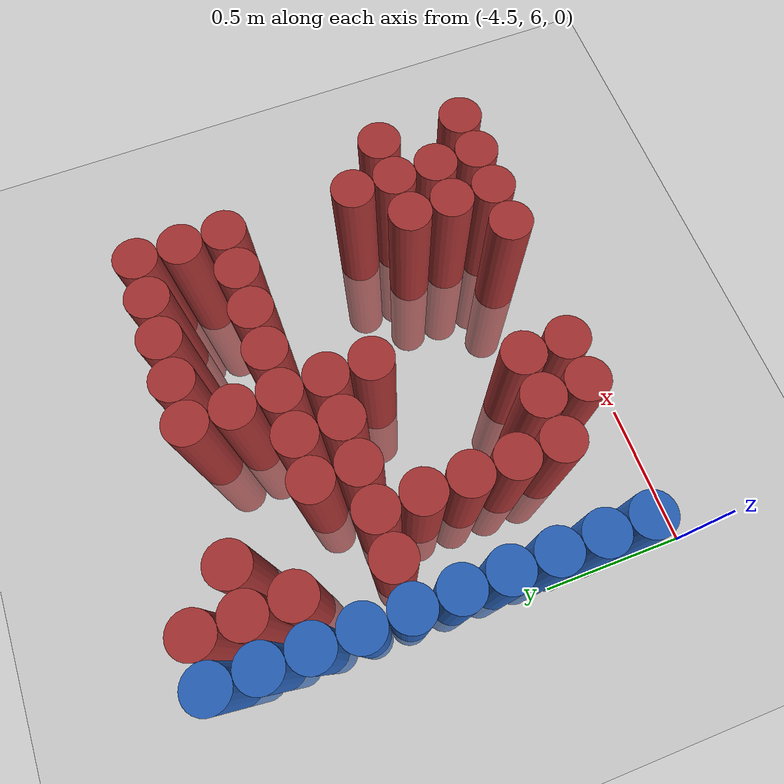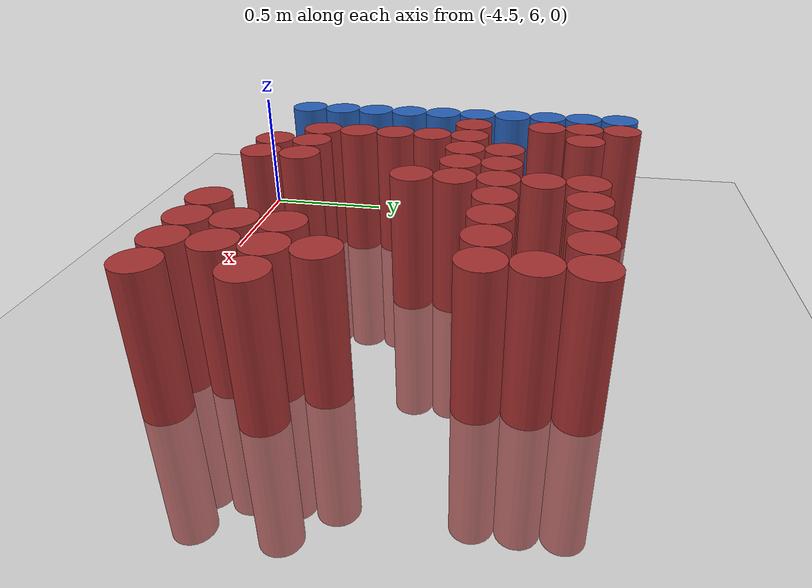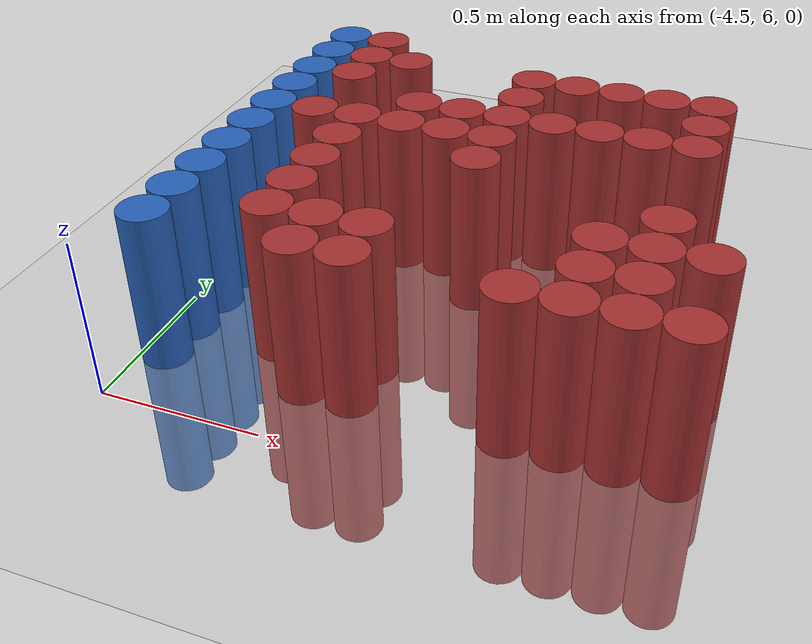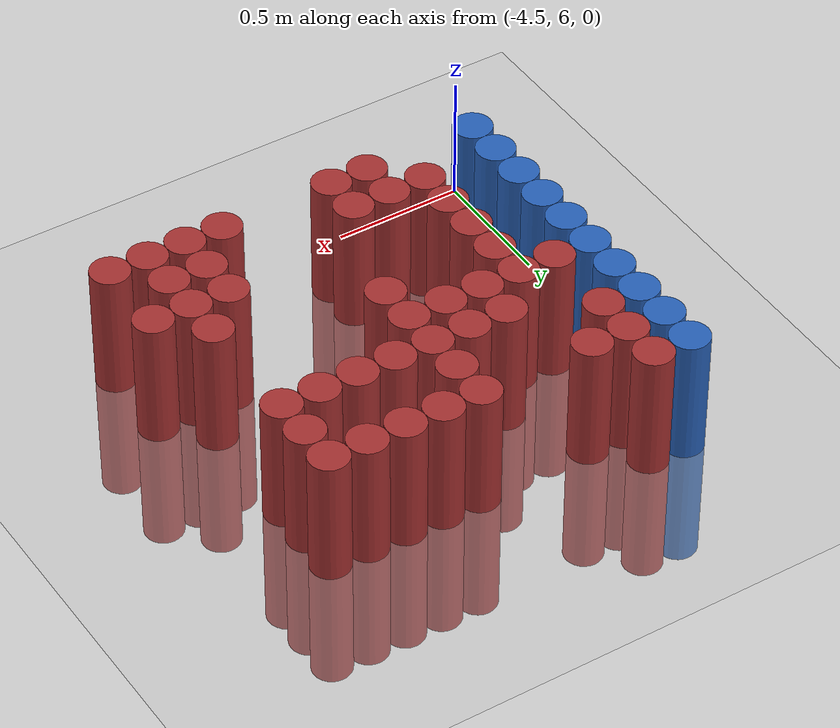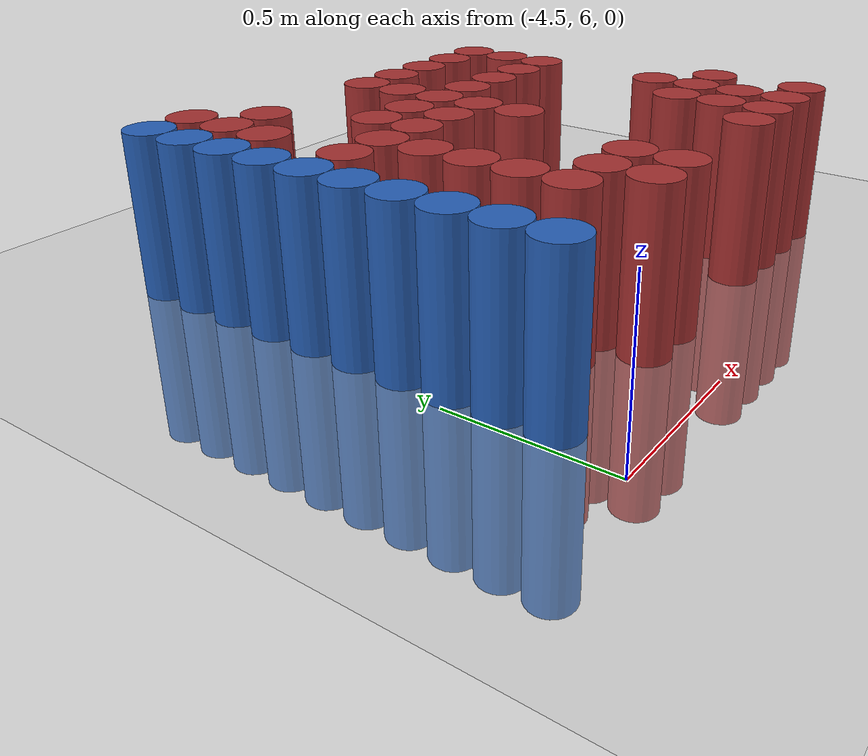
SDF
<sdf version="1.6">
 <world name="default">
  <model name="ground_plane">
   <static>1</static>
   <link name="link">
    <collision name="collision">
     <geometry><plane><normal>0 0 1</normal><size>100 100</size></plane></geometry>
     <surface><friction><ode><mu>100</mu><mu2>50</mu2></ode></friction></surface>
    </collision>
    <visual name="visual">
     <cast_shadows>0</cast_shadows>
     <geometry><plane><normal>0 0 1</normal><size>100 100</size></plane></geometry>
     <material>
      <script><uri>file://media/materials/scripts/gazebo.material</uri><name>Gazebo/Grey</name></script>
     </material>
    </visual>
   </link>
  </model>
  <model name="unit_cylinder_103">
   <static>1</static>
   <pose>-4.425000 6.225000 0.000000 0.000000 0.000000 0.000000</pose>
   <link name="link">
    <inertial>
     <mass>1</mass>
     <inertia><ixx>0.145833</ixx><ixy>0</ixy><ixz>0</ixz><iyy>0.145833</iyy><iyz>0</iyz><izz>0.125</izz></inertia>
    </inertial>
    <collision name="collision">
     <geometry><cylinder><radius>0.075000</radius><length>1</length></cylinder></geometry>
    </collision>
    <visual name="visual">
     <geometry><cylinder><radius>0.075000</radius><length>1</length></cylinder></geometry>
     <material>
      <ambient>0.152000 0.379000 0.720000 1</ambient>
      <diffuse>0.152000 0.379000 0.720000 1</diffuse>
     </material>
     <material>
      <script><name>Gazebo/Grey</name><uri>file://media/materials/scripts/gazebo.material</uri></script>
     </material>
    </visual>
   </link>
  </model>
  <model name="unit_cylinder_104">
   <static>1</static>
   <pose>-4.425000 6.375000 0.000000 0.000000 0.000000 0.000000</pose>
   <link name="link">
    <inertial>
     <mass>1</mass>
     <inertia><ixx>0.145833</ixx><ixy>0</ixy><ixz>0</ixz><iyy>0.145833</iyy><iyz>0</iyz><izz>0.125</izz></inertia>
    </inertial>
    <collision name="collision">
     <geometry><cylinder><radius>0.075000</radius><length>1</length></cylinder></geometry>
    </collision>
    <visual name="visual">
     <geometry><cylinder><radius>0.075000</radius><length>1</length></cylinder></geometry>
     <material>
      <ambient>0.152000 0.379000 0.720000 1</ambient>
      <diffuse>0.152000 0.379000 0.720000 1</diffuse>
     </material>
     <material>
      <script><name>Gazebo/Grey</name><uri>file://media/materials/scripts/gazebo.material</uri></script>
     </material>
    </visual>
   </link>
  </model>
  <model name="unit_cylinder_105">
   <static>1</static>
   <pose>-4.425000 6.525000 0.000000 0.000000 0.000000 0.000000</pose>
   <link name="link">
    <inertial>
     <mass>1</mass>
     <inertia><ixx>0.145833</ixx><ixy>0</ixy><ixz>0</ixz><iyy>0.145833</iyy><iyz>0</iyz><izz>0.125</izz></inertia>
    </inertial>
    <collision name="collision">
     <geometry><cylinder><radius>0.075000</radius><length>1</length></cylinder></geometry>
    </collision>
    <visual name="visual">
     <geometry><cylinder><radius>0.075000</radius><length>1</length></cylinder></geometry>
     <material>
      <ambient>0.152000 0.379000 0.720000 1</ambient>
      <diffuse>0.152000 0.379000 0.720000 1</diffuse>
     </material>
     <material>
      <script><name>Gazebo/Grey</name><uri>file://media/materials/scripts/gazebo.material</uri></script>
     </material>
    </visual>
   </link>
  </model>
  <model name="unit_cylinder_106">
   <static>1</static>
   <pose>-4.425000 6.675000 0.000000 0.000000 0.000000 0.000000</pose>
   <link name="link">
    <inertial>
     <mass>1</mass>
     <inertia><ixx>0.145833</ixx><ixy>0</ixy><ixz>0</ixz><iyy>0.145833</iyy><iyz>0</iyz><izz>0.125</izz></inertia>
    </inertial>
    <collision name="collision">
     <geometry><cylinder><radius>0.075000</radius><length>1</length></cylinder></geometry>
    </collision>
    <visual name="visual">
     <geometry><cylinder><radius>0.075000</radius><length>1</length></cylinder></geometry>
     <material>
      <ambient>0.152000 0.379000 0.720000 1</ambient>
      <diffuse>0.152000 0.379000 0.720000 1</diffuse>
     </material>
     <material>
      <script><name>Gazebo/Grey</name><uri>file://media/materials/scripts/gazebo.material</uri></script>
     </material>
    </visual>
   </link>
  </model>
  <model name="unit_cylinder_107">
   <static>1</static>
   <pose>-4.425000 6.825000 0.000000 0.000000 0.000000 0.000000</pose>
   <link name="link">
    <inertial>
     <mass>1</mass>
     <inertia><ixx>0.145833</ixx><ixy>0</ixy><ixz>0</ixz><iyy>0.145833</iyy><iyz>0</iyz><izz>0.125</izz></inertia>
    </inertial>
    <collision name="collision">
     <geometry><cylinder><radius>0.075000</radius><length>1</length></cylinder></geometry>
    </collision>
    <visual name="visual">
     <geometry><cylinder><radius>0.075000</radius><length>1</length></cylinder></geometry>
     <material>
      <ambient>0.152000 0.379000 0.720000 1</ambient>
      <diffuse>0.152000 0.379000 0.720000 1</diffuse>
     </material>
     <material>
      <script><name>Gazebo/Grey</name><uri>file://media/materials/scripts/gazebo.material</uri></script>
     </material>
    </visual>
   </link>
  </model>
  <model name="unit_cylinder_108">
   <static>1</static>
   <pose>-4.425000 6.975000 0.000000 0.000000 0.000000 0.000000</pose>
   <link name="link">
    <inertial>
     <mass>1</mass>
     <inertia><ixx>0.145833</ixx><ixy>0</ixy><ixz>0</ixz><iyy>0.145833</iyy><iyz>0</iyz><izz>0.125</izz></inertia>
    </inertial>
    <collision name="collision">
     <geometry><cylinder><radius>0.075000</radius><length>1</length></cylinder></geometry>
    </collision>
    <visual name="visual">
     <geometry><cylinder><radius>0.075000</radius><length>1</length></cylinder></geometry>
     <material>
      <ambient>0.152000 0.379000 0.720000 1</ambient>
      <diffuse>0.152000 0.379000 0.720000 1</diffuse>
     </material>
     <material>
      <script><name>Gazebo/Grey</name><uri>file://media/materials/scripts/gazebo.material</uri></script>
     </material>
    </visual>
   </link>
  </model>
  <model name="unit_cylinder_109">
   <static>1</static>
   <pose>-4.425000 7.125000 0.000000 0.000000 0.000000 0.000000</pose>
   <link name="link">
    <inertial>
     <mass>1</mass>
     <inertia><ixx>0.145833</ixx><ixy>0</ixy><ixz>0</ixz><iyy>0.145833</iyy><iyz>0</iyz><izz>0.125</izz></inertia>
    </inertial>
    <collision name="collision">
     <geometry><cylinder><radius>0.075000</radius><length>1</length></cylinder></geometry>
    </collision>
    <visual name="visual">
     <geometry><cylinder><radius>0.075000</radius><length>1</length></cylinder></geometry>
     <material>
      <ambient>0.152000 0.379000 0.720000 1</ambient>
      <diffuse>0.152000 0.379000 0.720000 1</diffuse>
     </material>
     <material>
      <script><name>Gazebo/Grey</name><uri>file://media/materials/scripts/gazebo.material</uri></script>
     </material>
    </visual>
   </link>
  </model>
  <model name="unit_cylinder_110">
   <static>1</static>
   <pose>-4.425000 7.275000 0.000000 0.000000 0.000000 0.000000</pose>
   <link name="link">
    <inertial>
     <mass>1</mass>
     <inertia><ixx>0.145833</ixx><ixy>0</ixy><ixz>0</ixz><iyy>0.145833</iyy><iyz>0</iyz><izz>0.125</izz></inertia>
    </inertial>
    <collision name="collision">
     <geometry><cylinder><radius>0.075000</radius><length>1</length></cylinder></geometry>
    </collision>
    <visual name="visual">
     <geometry><cylinder><radius>0.075000</radius><length>1</length></cylinder></geometry>
     <material>
      <ambient>0.152000 0.379000 0.720000 1</ambient>
      <diffuse>0.152000 0.379000 0.720000 1</diffuse>
     </material>
     <material>
      <script><name>Gazebo/Grey</name><uri>file://media/materials/scripts/gazebo.material</uri></script>
     </material>
    </visual>
   </link>
  </model>
  <model name="unit_cylinder_111">
   <static>1</static>
   <pose>-4.425000 7.425000 0.000000 0.000000 0.000000 0.000000</pose>
   <link name="link">
    <inertial>
     <mass>1</mass>
     <inertia><ixx>0.145833</ixx><ixy>0</ixy><ixz>0</ixz><iyy>0.145833</iyy><iyz>0</iyz><izz>0.125</izz></inertia>
    </inertial>
    <collision name="collision">
     <geometry><cylinder><radius>0.075000</radius><length>1</length></cylinder></geometry>
    </collision>
    <visual name="visual">
     <geometry><cylinder><radius>0.075000</radius><length>1</length></cylinder></geometry>
     <material>
      <ambient>0.152000 0.379000 0.720000 1</ambient>
      <diffuse>0.152000 0.379000 0.720000 1</diffuse>
     </material>
     <material>
      <script><name>Gazebo/Grey</name><uri>file://media/materials/scripts/gazebo.material</uri></script>
     </material>
    </visual>
   </link>
  </model>
  <model name="unit_cylinder_112">
   <static>1</static>
   <pose>-4.425000 7.575000 0.000000 0.000000 0.000000 0.000000</pose>
   <link name="link">
    <inertial>
     <mass>1</mass>
     <inertia><ixx>0.145833</ixx><ixy>0</ixy><ixz>0</ixz><iyy>0.145833</iyy><iyz>0</iyz><izz>0.125</izz></inertia>
    </inertial>
    <collision name="collision">
     <geometry><cylinder><radius>0.075000</radius><length>1</length></cylinder></geometry>
    </collision>
    <visual name="visual">
     <geometry><cylinder><radius>0.075000</radius><length>1</length></cylinder></geometry>
     <material>
      <ambient>0.152000 0.379000 0.720000 1</ambient>
      <diffuse>0.152000 0.379000 0.720000 1</diffuse>
     </material>
     <material>
      <script><name>Gazebo/Grey</name><uri>file://media/materials/scripts/gazebo.material</uri></script>
     </material>
    </visual>
   </link>
  </model>
  <model name="unit_cylinder_129">
   <static>1</static>
   <pose>-4.275000 6.975000 0.000000 0.000000 0.000000 0.000000</pose>
   <link name="link">
    <inertial>
     <mass>1</mass>
     <inertia><ixx>0.145833</ixx><ixy>0</ixy><ixz>0</ixz><iyy>0.145833</iyy><iyz>0</iyz><izz>0.125</izz></inertia>
    </inertial>
    <collision name="collision">
     <geometry><cylinder><radius>0.075000</radius><length>1</length></cylinder></geometry>
    </collision>
    <visual name="visual">
     <geometry><cylinder><radius>0.075000</radius><length>1</length></cylinder></geometry>
     <material>
      <ambient>0.648000 0.192000 0.192000 1</ambient>
      <diffuse>0.648000 0.192000 0.192000 1</diffuse>
     </material>
     <material>
      <script><name>Gazebo/Grey</name><uri>file://media/materials/scripts/gazebo.material</uri></script>
     </material>
    </visual>
   </link>
  </model>
  <model name="unit_cylinder_130">
   <static>1</static>
   <pose>-4.275000 7.275000 0.000000 0.000000 0.000000 0.000000</pose>
   <link name="link">
    <inertial>
     <mass>1</mass>
     <inertia><ixx>0.145833</ixx><ixy>0</ixy><ixz>0</ixz><iyy>0.145833</iyy><iyz>0</iyz><izz>0.125</izz></inertia>
    </inertial>
    <collision name="collision">
     <geometry><cylinder><radius>0.075000</radius><length>1</length></cylinder></geometry>
    </collision>
    <visual name="visual">
     <geometry><cylinder><radius>0.075000</radius><length>1</length></cylinder></geometry>
     <material>
      <ambient>0.648000 0.192000 0.192000 1</ambient>
      <diffuse>0.648000 0.192000 0.192000 1</diffuse>
     </material>
     <material>
      <script><name>Gazebo/Grey</name><uri>file://media/materials/scripts/gazebo.material</uri></script>
     </material>
    </visual>
   </link>
  </model>
  <model name="unit_cylinder_131">
   <static>1</static>
   <pose>-4.275000 7.425000 0.000000 0.000000 0.000000 0.000000</pose>
   <link name="link">
    <inertial>
     <mass>1</mass>
     <inertia><ixx>0.145833</ixx><ixy>0</ixy><ixz>0</ixz><iyy>0.145833</iyy><iyz>0</iyz><izz>0.125</izz></inertia>
    </inertial>
    <collision name="collision">
     <geometry><cylinder><radius>0.075000</radius><length>1</length></cylinder></geometry>
    </collision>
    <visual name="visual">
     <geometry><cylinder><radius>0.075000</radius><length>1</length></cylinder></geometry>
     <material>
      <ambient>0.648000 0.192000 0.192000 1</ambient>
      <diffuse>0.648000 0.192000 0.192000 1</diffuse>
     </material>
     <material>
      <script><name>Gazebo/Grey</name><uri>file://media/materials/scripts/gazebo.material</uri></script>
     </material>
    </visual>
   </link>
  </model>
  <model name="unit_cylinder_132">
   <static>1</static>
   <pose>-4.275000 7.575000 0.000000 0.000000 0.000000 0.000000</pose>
   <link name="link">
    <inertial>
     <mass>1</mass>
     <inertia><ixx>0.145833</ixx><ixy>0</ixy><ixz>0</ixz><iyy>0.145833</iyy><iyz>0</iyz><izz>0.125</izz></inertia>
    </inertial>
    <collision name="collision">
     <geometry><cylinder><radius>0.075000</radius><length>1</length></cylinder></geometry>
    </collision>
    <visual name="visual">
     <geometry><cylinder><radius>0.075000</radius><length>1</length></cylinder></geometry>
     <material>
      <ambient>0.648000 0.192000 0.192000 1</ambient>
      <diffuse>0.648000 0.192000 0.192000 1</diffuse>
     </material>
     <material>
      <script><name>Gazebo/Grey</name><uri>file://media/materials/scripts/gazebo.material</uri></script>
     </material>
    </visual>
   </link>
  </model>
  <model name="unit_cylinder_142">
   <static>1</static>
   <pose>-4.125000 6.375000 0.000000 0.000000 0.000000 0.000000</pose>
   <link name="link">
    <inertial>
     <mass>1</mass>
     <inertia><ixx>0.145833</ixx><ixy>0</ixy><ixz>0</ixz><iyy>0.145833</iyy><iyz>0</iyz><izz>0.125</izz></inertia>
    </inertial>
    <collision name="collision">
     <geometry><cylinder><radius>0.075000</radius><length>1</length></cylinder></geometry>
    </collision>
    <visual name="visual">
     <geometry><cylinder><radius>0.075000</radius><length>1</length></cylinder></geometry>
     <material>
      <ambient>0.648000 0.192000 0.192000 1</ambient>
      <diffuse>0.648000 0.192000 0.192000 1</diffuse>
     </material>
     <material>
      <script><name>Gazebo/Grey</name><uri>file://media/materials/scripts/gazebo.material</uri></script>
     </material>
    </visual>
   </link>
  </model>
  <model name="unit_cylinder_143">
   <static>1</static>
   <pose>-4.125000 6.525000 0.000000 0.000000 0.000000 0.000000</pose>
   <link name="link">
    <inertial>
     <mass>1</mass>
     <inertia><ixx>0.145833</ixx><ixy>0</ixy><ixz>0</ixz><iyy>0.145833</iyy><iyz>0</iyz><izz>0.125</izz></inertia>
    </inertial>
    <collision name="collision">
     <geometry><cylinder><radius>0.075000</radius><length>1</length></cylinder></geometry>
    </collision>
    <visual name="visual">
     <geometry><cylinder><radius>0.075000</radius><length>1</length></cylinder></geometry>
     <material>
      <ambient>0.648000 0.192000 0.192000 1</ambient>
      <diffuse>0.648000 0.192000 0.192000 1</diffuse>
     </material>
     <material>
      <script><name>Gazebo/Grey</name><uri>file://media/materials/scripts/gazebo.material</uri></script>
     </material>
    </visual>
   </link>
  </model>
  <model name="unit_cylinder_144">
   <static>1</static>
   <pose>-4.125000 6.675000 0.000000 0.000000 0.000000 0.000000</pose>
   <link name="link">
    <inertial>
     <mass>1</mass>
     <inertia><ixx>0.145833</ixx><ixy>0</ixy><ixz>0</ixz><iyy>0.145833</iyy><iyz>0</iyz><izz>0.125</izz></inertia>
    </inertial>
    <collision name="collision">
     <geometry><cylinder><radius>0.075000</radius><length>1</length></cylinder></geometry>
    </collision>
    <visual name="visual">
     <geometry><cylinder><radius>0.075000</radius><length>1</length></cylinder></geometry>
     <material>
      <ambient>0.648000 0.192000 0.192000 1</ambient>
      <diffuse>0.648000 0.192000 0.192000 1</diffuse>
     </material>
     <material>
      <script><name>Gazebo/Grey</name><uri>file://media/materials/scripts/gazebo.material</uri></script>
     </material>
    </visual>
   </link>
  </model>
  <model name="unit_cylinder_145">
   <static>1</static>
   <pose>-4.125000 6.825000 0.000000 0.000000 0.000000 0.000000</pose>
   <link name="link">
    <inertial>
     <mass>1</mass>
     <inertia><ixx>0.145833</ixx><ixy>0</ixy><ixz>0</ixz><iyy>0.145833</iyy><iyz>0</iyz><izz>0.125</izz></inertia>
    </inertial>
    <collision name="collision">
     <geometry><cylinder><radius>0.075000</radius><length>1</length></cylinder></geometry>
    </collision>
    <visual name="visual">
     <geometry><cylinder><radius>0.075000</radius><length>1</length></cylinder></geometry>
     <material>
      <ambient>0.648000 0.192000 0.192000 1</ambient>
      <diffuse>0.648000 0.192000 0.192000 1</diffuse>
     </material>
     <material>
      <script><name>Gazebo/Grey</name><uri>file://media/materials/scripts/gazebo.material</uri></script>
     </material>
    </visual>
   </link>
  </model>
  <model name="unit_cylinder_146">
   <static>1</static>
   <pose>-4.125000 6.975000 0.000000 0.000000 0.000000 0.000000</pose>
   <link name="link">
    <inertial>
     <mass>1</mass>
     <inertia><ixx>0.145833</ixx><ixy>0</ixy><ixz>0</ixz><iyy>0.145833</iyy><iyz>0</iyz><izz>0.125</izz></inertia>
    </inertial>
    <collision name="collision">
     <geometry><cylinder><radius>0.075000</radius><length>1</length></cylinder></geometry>
    </collision>
    <visual name="visual">
     <geometry><cylinder><radius>0.075000</radius><length>1</length></cylinder></geometry>
     <material>
      <ambient>0.648000 0.192000 0.192000 1</ambient>
      <diffuse>0.648000 0.192000 0.192000 1</diffuse>
     </material>
     <material>
      <script><name>Gazebo/Grey</name><uri>file://media/materials/scripts/gazebo.material</uri></script>
     </material>
    </visual>
   </link>
  </model>
  <model name="unit_cylinder_147">
   <static>1</static>
   <pose>-4.125000 7.425000 0.000000 0.000000 0.000000 0.000000</pose>
   <link name="link">
    <inertial>
     <mass>1</mass>
     <inertia><ixx>0.145833</ixx><ixy>0</ixy><ixz>0</ixz><iyy>0.145833</iyy><iyz>0</iyz><izz>0.125</izz></inertia>
    </inertial>
    <collision name="collision">
     <geometry><cylinder><radius>0.075000</radius><length>1</length></cylinder></geometry>
    </collision>
    <visual name="visual">
     <geometry><cylinder><radius>0.075000</radius><length>1</length></cylinder></geometry>
     <material>
      <ambient>0.648000 0.192000 0.192000 1</ambient>
      <diffuse>0.648000 0.192000 0.192000 1</diffuse>
     </material>
     <material>
      <script><name>Gazebo/Grey</name><uri>file://media/materials/scripts/gazebo.material</uri></script>
     </material>
    </visual>
   </link>
  </model>
  <model name="unit_cylinder_150">
   <static>1</static>
   <pose>-3.975000 6.225000 0.000000 0.000000 0.000000 0.000000</pose>
   <link name="link">
    <inertial>
     <mass>1</mass>
     <inertia><ixx>0.145833</ixx><ixy>0</ixy><ixz>0</ixz><iyy>0.145833</iyy><iyz>0</iyz><izz>0.125</izz></inertia>
    </inertial>
    <collision name="collision">
     <geometry><cylinder><radius>0.075000</radius><length>1</length></cylinder></geometry>
    </collision>
    <visual name="visual">
     <geometry><cylinder><radius>0.075000</radius><length>1</length></cylinder></geometry>
     <material>
      <ambient>0.648000 0.192000 0.192000 1</ambient>
      <diffuse>0.648000 0.192000 0.192000 1</diffuse>
     </material>
     <material>
      <script><name>Gazebo/Grey</name><uri>file://media/materials/scripts/gazebo.material</uri></script>
     </material>
    </visual>
   </link>
  </model>
  <model name="unit_cylinder_151">
   <static>1</static>
   <pose>-3.975000 6.375000 0.000000 0.000000 0.000000 0.000000</pose>
   <link name="link">
    <inertial>
     <mass>1</mass>
     <inertia><ixx>0.145833</ixx><ixy>0</ixy><ixz>0</ixz><iyy>0.145833</iyy><iyz>0</iyz><izz>0.125</izz></inertia>
    </inertial>
    <collision name="collision">
     <geometry><cylinder><radius>0.075000</radius><length>1</length></cylinder></geometry>
    </collision>
    <visual name="visual">
     <geometry><cylinder><radius>0.075000</radius><length>1</length></cylinder></geometry>
     <material>
      <ambient>0.648000 0.192000 0.192000 1</ambient>
      <diffuse>0.648000 0.192000 0.192000 1</diffuse>
     </material>
     <material>
      <script><name>Gazebo/Grey</name><uri>file://media/materials/scripts/gazebo.material</uri></script>
     </material>
    </visual>
   </link>
  </model>
  <model name="unit_cylinder_152">
   <static>1</static>
   <pose>-3.975000 6.975000 0.000000 0.000000 0.000000 0.000000</pose>
   <link name="link">
    <inertial>
     <mass>1</mass>
     <inertia><ixx>0.145833</ixx><ixy>0</ixy><ixz>0</ixz><iyy>0.145833</iyy><iyz>0</iyz><izz>0.125</izz></inertia>
    </inertial>
    <collision name="collision">
     <geometry><cylinder><radius>0.075000</radius><length>1</length></cylinder></geometry>
    </collision>
    <visual name="visual">
     <geometry><cylinder><radius>0.075000</radius><length>1</length></cylinder></geometry>
     <material>
      <ambient>0.648000 0.192000 0.192000 1</ambient>
      <diffuse>0.648000 0.192000 0.192000 1</diffuse>
     </material>
     <material>
      <script><name>Gazebo/Grey</name><uri>file://media/materials/scripts/gazebo.material</uri></script>
     </material>
    </visual>
   </link>
  </model>
  <model name="unit_cylinder_153">
   <static>1</static>
   <pose>-3.975000 7.125000 0.000000 0.000000 0.000000 0.000000</pose>
   <link name="link">
    <inertial>
     <mass>1</mass>
     <inertia><ixx>0.145833</ixx><ixy>0</ixy><ixz>0</ixz><iyy>0.145833</iyy><iyz>0</iyz><izz>0.125</izz></inertia>
    </inertial>
    <collision name="collision">
     <geometry><cylinder><radius>0.075000</radius><length>1</length></cylinder></geometry>
    </collision>
    <visual name="visual">
     <geometry><cylinder><radius>0.075000</radius><length>1</length></cylinder></geometry>
     <material>
      <ambient>0.648000 0.192000 0.192000 1</ambient>
      <diffuse>0.648000 0.192000 0.192000 1</diffuse>
     </material>
     <material>
      <script><name>Gazebo/Grey</name><uri>file://media/materials/scripts/gazebo.material</uri></script>
     </material>
    </visual>
   </link>
  </model>
  <model name="unit_cylinder_157">
   <static>1</static>
   <pose>-3.825000 6.225000 0.000000 0.000000 0.000000 0.000000</pose>
   <link name="link">
    <inertial>
     <mass>1</mass>
     <inertia><ixx>0.145833</ixx><ixy>0</ixy><ixz>0</ixz><iyy>0.145833</iyy><iyz>0</iyz><izz>0.125</izz></inertia>
    </inertial>
    <collision name="collision">
     <geometry><cylinder><radius>0.075000</radius><length>1</length></cylinder></geometry>
    </collision>
    <visual name="visual">
     <geometry><cylinder><radius>0.075000</radius><length>1</length></cylinder></geometry>
     <material>
      <ambient>0.648000 0.192000 0.192000 1</ambient>
      <diffuse>0.648000 0.192000 0.192000 1</diffuse>
     </material>
     <material>
      <script><name>Gazebo/Grey</name><uri>file://media/materials/scripts/gazebo.material</uri></script>
     </material>
    </visual>
   </link>
  </model>
  <model name="unit_cylinder_158">
   <static>1</static>
   <pose>-3.825000 6.375000 0.000000 0.000000 0.000000 0.000000</pose>
   <link name="link">
    <inertial>
     <mass>1</mass>
     <inertia><ixx>0.145833</ixx><ixy>0</ixy><ixz>0</ixz><iyy>0.145833</iyy><iyz>0</iyz><izz>0.125</izz></inertia>
    </inertial>
    <collision name="collision">
     <geometry><cylinder><radius>0.075000</radius><length>1</length></cylinder></geometry>
    </collision>
    <visual name="visual">
     <geometry><cylinder><radius>0.075000</radius><length>1</length></cylinder></geometry>
     <material>
      <ambient>0.648000 0.192000 0.192000 1</ambient>
      <diffuse>0.648000 0.192000 0.192000 1</diffuse>
     </material>
     <material>
      <script><name>Gazebo/Grey</name><uri>file://media/materials/scripts/gazebo.material</uri></script>
     </material>
    </visual>
   </link>
  </model>
  <model name="unit_cylinder_159">
   <static>1</static>
   <pose>-3.825000 6.975000 0.000000 0.000000 0.000000 0.000000</pose>
   <link name="link">
    <inertial>
     <mass>1</mass>
     <inertia><ixx>0.145833</ixx><ixy>0</ixy><ixz>0</ixz><iyy>0.145833</iyy><iyz>0</iyz><izz>0.125</izz></inertia>
    </inertial>
    <collision name="collision">
     <geometry><cylinder><radius>0.075000</radius><length>1</length></cylinder></geometry>
    </collision>
    <visual name="visual">
     <geometry><cylinder><radius>0.075000</radius><length>1</length></cylinder></geometry>
     <material>
      <ambient>0.648000 0.192000 0.192000 1</ambient>
      <diffuse>0.648000 0.192000 0.192000 1</diffuse>
     </material>
     <material>
      <script><name>Gazebo/Grey</name><uri>file://media/materials/scripts/gazebo.material</uri></script>
     </material>
    </visual>
   </link>
  </model>
  <model name="unit_cylinder_160">
   <static>1</static>
   <pose>-3.825000 7.125000 0.000000 0.000000 0.000000 0.000000</pose>
   <link name="link">
    <inertial>
     <mass>1</mass>
     <inertia><ixx>0.145833</ixx><ixy>0</ixy><ixz>0</ixz><iyy>0.145833</iyy><iyz>0</iyz><izz>0.125</izz></inertia>
    </inertial>
    <collision name="collision">
     <geometry><cylinder><radius>0.075000</radius><length>1</length></cylinder></geometry>
    </collision>
    <visual name="visual">
     <geometry><cylinder><radius>0.075000</radius><length>1</length></cylinder></geometry>
     <material>
      <ambient>0.648000 0.192000 0.192000 1</ambient>
      <diffuse>0.648000 0.192000 0.192000 1</diffuse>
     </material>
     <material>
      <script><name>Gazebo/Grey</name><uri>file://media/materials/scripts/gazebo.material</uri></script>
     </material>
    </visual>
   </link>
  </model>
  <model name="unit_cylinder_165">
   <static>1</static>
   <pose>-3.675000 6.825000 0.000000 0.000000 0.000000 0.000000</pose>
   <link name="link">
    <inertial>
     <mass>1</mass>
     <inertia><ixx>0.145833</ixx><ixy>0</ixy><ixz>0</ixz><iyy>0.145833</iyy><iyz>0</iyz><izz>0.125</izz></inertia>
    </inertial>
    <collision name="collision">
     <geometry><cylinder><radius>0.075000</radius><length>1</length></cylinder></geometry>
    </collision>
    <visual name="visual">
     <geometry><cylinder><radius>0.075000</radius><length>1</length></cylinder></geometry>
     <material>
      <ambient>0.648000 0.192000 0.192000 1</ambient>
      <diffuse>0.648000 0.192000 0.192000 1</diffuse>
     </material>
     <material>
      <script><name>Gazebo/Grey</name><uri>file://media/materials/scripts/gazebo.material</uri></script>
     </material>
    </visual>
   </link>
  </model>
  <model name="unit_cylinder_166">
   <static>1</static>
   <pose>-3.675000 6.975000 0.000000 0.000000 0.000000 0.000000</pose>
   <link name="link">
    <inertial>
     <mass>1</mass>
     <inertia><ixx>0.145833</ixx><ixy>0</ixy><ixz>0</ixz><iyy>0.145833</iyy><iyz>0</iyz><izz>0.125</izz></inertia>
    </inertial>
    <collision name="collision">
     <geometry><cylinder><radius>0.075000</radius><length>1</length></cylinder></geometry>
    </collision>
    <visual name="visual">
     <geometry><cylinder><radius>0.075000</radius><length>1</length></cylinder></geometry>
     <material>
      <ambient>0.648000 0.192000 0.192000 1</ambient>
      <diffuse>0.648000 0.192000 0.192000 1</diffuse>
     </material>
     <material>
      <script><name>Gazebo/Grey</name><uri>file://media/materials/scripts/gazebo.material</uri></script>
     </material>
    </visual>
   </link>
  </model>
  <model name="unit_cylinder_167">
   <static>1</static>
   <pose>-3.675000 7.125000 0.000000 0.000000 0.000000 0.000000</pose>
   <link name="link">
    <inertial>
     <mass>1</mass>
     <inertia><ixx>0.145833</ixx><ixy>0</ixy><ixz>0</ixz><iyy>0.145833</iyy><iyz>0</iyz><izz>0.125</izz></inertia>
    </inertial>
    <collision name="collision">
     <geometry><cylinder><radius>0.075000</radius><length>1</length></cylinder></geometry>
    </collision>
    <visual name="visual">
     <geometry><cylinder><radius>0.075000</radius><length>1</length></cylinder></geometry>
     <material>
      <ambient>0.648000 0.192000 0.192000 1</ambient>
      <diffuse>0.648000 0.192000 0.192000 1</diffuse>
     </material>
     <material>
      <script><name>Gazebo/Grey</name><uri>file://media/materials/scripts/gazebo.material</uri></script>
     </material>
    </visual>
   </link>
  </model>
  <model name="unit_cylinder_168">
   <static>1</static>
   <pose>-3.675000 7.275000 0.000000 0.000000 0.000000 0.000000</pose>
   <link name="link">
    <inertial>
     <mass>1</mass>
     <inertia><ixx>0.145833</ixx><ixy>0</ixy><ixz>0</ixz><iyy>0.145833</iyy><iyz>0</iyz><izz>0.125</izz></inertia>
    </inertial>
    <collision name="collision">
     <geometry><cylinder><radius>0.075000</radius><length>1</length></cylinder></geometry>
    </collision>
    <visual name="visual">
     <geometry><cylinder><radius>0.075000</radius><length>1</length></cylinder></geometry>
     <material>
      <ambient>0.648000 0.192000 0.192000 1</ambient>
      <diffuse>0.648000 0.192000 0.192000 1</diffuse>
     </material>
     <material>
      <script><name>Gazebo/Grey</name><uri>file://media/materials/scripts/gazebo.material</uri></script>
     </material>
    </visual>
   </link>
  </model>
  <model name="unit_cylinder_169">
   <static>1</static>
   <pose>-3.675000 7.425000 0.000000 0.000000 0.000000 0.000000</pose>
   <link name="link">
    <inertial>
     <mass>1</mass>
     <inertia><ixx>0.145833</ixx><ixy>0</ixy><ixz>0</ixz><iyy>0.145833</iyy><iyz>0</iyz><izz>0.125</izz></inertia>
    </inertial>
    <collision name="collision">
     <geometry><cylinder><radius>0.075000</radius><length>1</length></cylinder></geometry>
    </collision>
    <visual name="visual">
     <geometry><cylinder><radius>0.075000</radius><length>1</length></cylinder></geometry>
     <material>
      <ambient>0.648000 0.192000 0.192000 1</ambient>
      <diffuse>0.648000 0.192000 0.192000 1</diffuse>
     </material>
     <material>
      <script><name>Gazebo/Grey</name><uri>file://media/materials/scripts/gazebo.material</uri></script>
     </material>
    </visual>
   </link>
  </model>
  <model name="unit_cylinder_176">
   <static>1</static>
   <pose>-3.525000 7.125000 0.000000 0.000000 0.000000 0.000000</pose>
   <link name="link">
    <inertial>
     <mass>1</mass>
     <inertia><ixx>0.145833</ixx><ixy>0</ixy><ixz>0</ixz><iyy>0.145833</iyy><iyz>0</iyz><izz>0.125</izz></inertia>
    </inertial>
    <collision name="collision">
     <geometry><cylinder><radius>0.075000</radius><length>1</length></cylinder></geometry>
    </collision>
    <visual name="visual">
     <geometry><cylinder><radius>0.075000</radius><length>1</length></cylinder></geometry>
     <material>
      <ambient>0.648000 0.192000 0.192000 1</ambient>
      <diffuse>0.648000 0.192000 0.192000 1</diffuse>
     </material>
     <material>
      <script><name>Gazebo/Grey</name><uri>file://media/materials/scripts/gazebo.material</uri></script>
     </material>
    </visual>
   </link>
  </model>
  <model name="unit_cylinder_177">
   <static>1</static>
   <pose>-3.525000 7.425000 0.000000 0.000000 0.000000 0.000000</pose>
   <link name="link">
    <inertial>
     <mass>1</mass>
     <inertia><ixx>0.145833</ixx><ixy>0</ixy><ixz>0</ixz><iyy>0.145833</iyy><iyz>0</iyz><izz>0.125</izz></inertia>
    </inertial>
    <collision name="collision">
     <geometry><cylinder><radius>0.075000</radius><length>1</length></cylinder></geometry>
    </collision>
    <visual name="visual">
     <geometry><cylinder><radius>0.075000</radius><length>1</length></cylinder></geometry>
     <material>
      <ambient>0.648000 0.192000 0.192000 1</ambient>
      <diffuse>0.648000 0.192000 0.192000 1</diffuse>
     </material>
     <material>
      <script><name>Gazebo/Grey</name><uri>file://media/materials/scripts/gazebo.material</uri></script>
     </material>
    </visual>
   </link>
  </model>
  <model name="unit_cylinder_182">
   <static>1</static>
   <pose>-3.375000 6.225000 0.000000 0.000000 0.000000 0.000000</pose>
   <link name="link">
    <inertial>
     <mass>1</mass>
     <inertia><ixx>0.145833</ixx><ixy>0</ixy><ixz>0</ixz><iyy>0.145833</iyy><iyz>0</iyz><izz>0.125</izz></inertia>
    </inertial>
    <collision name="collision">
     <geometry><cylinder><radius>0.075000</radius><length>1</length></cylinder></geometry>
    </collision>
    <visual name="visual">
     <geometry><cylinder><radius>0.075000</radius><length>1</length></cylinder></geometry>
     <material>
      <ambient>0.648000 0.192000 0.192000 1</ambient>
      <diffuse>0.648000 0.192000 0.192000 1</diffuse>
     </material>
     <material>
      <script><name>Gazebo/Grey</name><uri>file://media/materials/scripts/gazebo.material</uri></script>
     </material>
    </visual>
   </link>
  </model>
  <model name="unit_cylinder_183">
   <static>1</static>
   <pose>-3.375000 7.125000 0.000000 0.000000 0.000000 0.000000</pose>
   <link name="link">
    <inertial>
     <mass>1</mass>
     <inertia><ixx>0.145833</ixx><ixy>0</ixy><ixz>0</ixz><iyy>0.145833</iyy><iyz>0</iyz><izz>0.125</izz></inertia>
    </inertial>
    <collision name="collision">
     <geometry><cylinder><radius>0.075000</radius><length>1</length></cylinder></geometry>
    </collision>
    <visual name="visual">
     <geometry><cylinder><radius>0.075000</radius><length>1</length></cylinder></geometry>
     <material>
      <ambient>0.648000 0.192000 0.192000 1</ambient>
      <diffuse>0.648000 0.192000 0.192000 1</diffuse>
     </material>
     <material>
      <script><name>Gazebo/Grey</name><uri>file://media/materials/scripts/gazebo.material</uri></script>
     </material>
    </visual>
   </link>
  </model>
  <model name="unit_cylinder_184">
   <static>1</static>
   <pose>-3.375000 7.425000 0.000000 0.000000 0.000000 0.000000</pose>
   <link name="link">
    <inertial>
     <mass>1</mass>
     <inertia><ixx>0.145833</ixx><ixy>0</ixy><ixz>0</ixz><iyy>0.145833</iyy><iyz>0</iyz><izz>0.125</izz></inertia>
    </inertial>
    <collision name="collision">
     <geometry><cylinder><radius>0.075000</radius><length>1</length></cylinder></geometry>
    </collision>
    <visual name="visual">
     <geometry><cylinder><radius>0.075000</radius><length>1</length></cylinder></geometry>
     <material>
      <ambient>0.648000 0.192000 0.192000 1</ambient>
      <diffuse>0.648000 0.192000 0.192000 1</diffuse>
     </material>
     <material>
      <script><name>Gazebo/Grey</name><uri>file://media/materials/scripts/gazebo.material</uri></script>
     </material>
    </visual>
   </link>
  </model>
  <model name="unit_cylinder_192">
   <static>1</static>
   <pose>-3.225000 6.225000 0.000000 0.000000 0.000000 0.000000</pose>
   <link name="link">
    <inertial>
     <mass>1</mass>
     <inertia><ixx>0.145833</ixx><ixy>0</ixy><ixz>0</ixz><iyy>0.145833</iyy><iyz>0</iyz><izz>0.125</izz></inertia>
    </inertial>
    <collision name="collision">
     <geometry><cylinder><radius>0.075000</radius><length>1</length></cylinder></geometry>
    </collision>
    <visual name="visual">
     <geometry><cylinder><radius>0.075000</radius><length>1</length></cylinder></geometry>
     <material>
      <ambient>0.648000 0.192000 0.192000 1</ambient>
      <diffuse>0.648000 0.192000 0.192000 1</diffuse>
     </material>
     <material>
      <script><name>Gazebo/Grey</name><uri>file://media/materials/scripts/gazebo.material</uri></script>
     </material>
    </visual>
   </link>
  </model>
  <model name="unit_cylinder_193">
   <static>1</static>
   <pose>-3.225000 6.375000 0.000000 0.000000 0.000000 0.000000</pose>
   <link name="link">
    <inertial>
     <mass>1</mass>
     <inertia><ixx>0.145833</ixx><ixy>0</ixy><ixz>0</ixz><iyy>0.145833</iyy><iyz>0</iyz><izz>0.125</izz></inertia>
    </inertial>
    <collision name="collision">
     <geometry><cylinder><radius>0.075000</radius><length>1</length></cylinder></geometry>
    </collision>
    <visual name="visual">
     <geometry><cylinder><radius>0.075000</radius><length>1</length></cylinder></geometry>
     <material>
      <ambient>0.648000 0.192000 0.192000 1</ambient>
      <diffuse>0.648000 0.192000 0.192000 1</diffuse>
     </material>
     <material>
      <script><name>Gazebo/Grey</name><uri>file://media/materials/scripts/gazebo.material</uri></script>
     </material>
    </visual>
   </link>
  </model>
  <model name="unit_cylinder_194">
   <static>1</static>
   <pose>-3.225000 6.525000 0.000000 0.000000 0.000000 0.000000</pose>
   <link name="link">
    <inertial>
     <mass>1</mass>
     <inertia><ixx>0.145833</ixx><ixy>0</ixy><ixz>0</ixz><iyy>0.145833</iyy><iyz>0</iyz><izz>0.125</izz></inertia>
    </inertial>
    <collision name="collision">
     <geometry><cylinder><radius>0.075000</radius><length>1</length></cylinder></geometry>
    </collision>
    <visual name="visual">
     <geometry><cylinder><radius>0.075000</radius><length>1</length></cylinder></geometry>
     <material>
      <ambient>0.648000 0.192000 0.192000 1</ambient>
      <diffuse>0.648000 0.192000 0.192000 1</diffuse>
     </material>
     <material>
      <script><name>Gazebo/Grey</name><uri>file://media/materials/scripts/gazebo.material</uri></script>
     </material>
    </visual>
   </link>
  </model>
  <model name="unit_cylinder_195">
   <static>1</static>
   <pose>-3.225000 7.125000 0.000000 0.000000 0.000000 0.000000</pose>
   <link name="link">
    <inertial>
     <mass>1</mass>
     <inertia><ixx>0.145833</ixx><ixy>0</ixy><ixz>0</ixz><iyy>0.145833</iyy><iyz>0</iyz><izz>0.125</izz></inertia>
    </inertial>
    <collision name="collision">
     <geometry><cylinder><radius>0.075000</radius><length>1</length></cylinder></geometry>
    </collision>
    <visual name="visual">
     <geometry><cylinder><radius>0.075000</radius><length>1</length></cylinder></geometry>
     <material>
      <ambient>0.648000 0.192000 0.192000 1</ambient>
      <diffuse>0.648000 0.192000 0.192000 1</diffuse>
     </material>
     <material>
      <script><name>Gazebo/Grey</name><uri>file://media/materials/scripts/gazebo.material</uri></script>
     </material>
    </visual>
   </link>
  </model>
  <model name="unit_cylinder_196">
   <static>1</static>
   <pose>-3.225000 7.425000 0.000000 0.000000 0.000000 0.000000</pose>
   <link name="link">
    <inertial>
     <mass>1</mass>
     <inertia><ixx>0.145833</ixx><ixy>0</ixy><ixz>0</ixz><iyy>0.145833</iyy><iyz>0</iyz><izz>0.125</izz></inertia>
    </inertial>
    <collision name="collision">
     <geometry><cylinder><radius>0.075000</radius><length>1</length></cylinder></geometry>
    </collision>
    <visual name="visual">
     <geometry><cylinder><radius>0.075000</radius><length>1</length></cylinder></geometry>
     <material>
      <ambient>0.648000 0.192000 0.192000 1</ambient>
      <diffuse>0.648000 0.192000 0.192000 1</diffuse>
     </material>
     <material>
      <script><name>Gazebo/Grey</name><uri>file://media/materials/scripts/gazebo.material</uri></script>
     </material>
    </visual>
   </link>
  </model>
  <model name="unit_cylinder_208">
   <static>1</static>
   <pose>-3.075000 6.225000 0.000000 0.000000 0.000000 0.000000</pose>
   <link name="link">
    <inertial>
     <mass>1</mass>
     <inertia><ixx>0.145833</ixx><ixy>0</ixy><ixz>0</ixz><iyy>0.145833</iyy><iyz>0</iyz><izz>0.125</izz></inertia>
    </inertial>
    <collision name="collision">
     <geometry><cylinder><radius>0.075000</radius><length>1</length></cylinder></geometry>
    </collision>
    <visual name="visual">
     <geometry><cylinder><radius>0.075000</radius><length>1</length></cylinder></geometry>
     <material>
      <ambient>0.648000 0.192000 0.192000 1</ambient>
      <diffuse>0.648000 0.192000 0.192000 1</diffuse>
     </material>
     <material>
      <script><name>Gazebo/Grey</name><uri>file://media/materials/scripts/gazebo.material</uri></script>
     </material>
    </visual>
   </link>
  </model>
  <model name="unit_cylinder_209">
   <static>1</static>
   <pose>-3.075000 6.375000 0.000000 0.000000 0.000000 0.000000</pose>
   <link name="link">
    <inertial>
     <mass>1</mass>
     <inertia><ixx>0.145833</ixx><ixy>0</ixy><ixz>0</ixz><iyy>0.145833</iyy><iyz>0</iyz><izz>0.125</izz></inertia>
    </inertial>
    <collision name="collision">
     <geometry><cylinder><radius>0.075000</radius><length>1</length></cylinder></geometry>
    </collision>
    <visual name="visual">
     <geometry><cylinder><radius>0.075000</radius><length>1</length></cylinder></geometry>
     <material>
      <ambient>0.648000 0.192000 0.192000 1</ambient>
      <diffuse>0.648000 0.192000 0.192000 1</diffuse>
     </material>
     <material>
      <script><name>Gazebo/Grey</name><uri>file://media/materials/scripts/gazebo.material</uri></script>
     </material>
    </visual>
   </link>
  </model>
  <model name="unit_cylinder_210">
   <static>1</static>
   <pose>-3.075000 6.525000 0.000000 0.000000 0.000000 0.000000</pose>
   <link name="link">
    <inertial>
     <mass>1</mass>
     <inertia><ixx>0.145833</ixx><ixy>0</ixy><ixz>0</ixz><iyy>0.145833</iyy><iyz>0</iyz><izz>0.125</izz></inertia>
    </inertial>
    <collision name="collision">
     <geometry><cylinder><radius>0.075000</radius><length>1</length></cylinder></geometry>
    </collision>
    <visual name="visual">
     <geometry><cylinder><radius>0.075000</radius><length>1</length></cylinder></geometry>
     <material>
      <ambient>0.648000 0.192000 0.192000 1</ambient>
      <diffuse>0.648000 0.192000 0.192000 1</diffuse>
     </material>
     <material>
      <script><name>Gazebo/Grey</name><uri>file://media/materials/scripts/gazebo.material</uri></script>
     </material>
    </visual>
   </link>
  </model>
  <model name="unit_cylinder_211">
   <static>1</static>
   <pose>-3.075000 6.675000 0.000000 0.000000 0.000000 0.000000</pose>
   <link name="link">
    <inertial>
     <mass>1</mass>
     <inertia><ixx>0.145833</ixx><ixy>0</ixy><ixz>0</ixz><iyy>0.145833</iyy><iyz>0</iyz><izz>0.125</izz></inertia>
    </inertial>
    <collision name="collision">
     <geometry><cylinder><radius>0.075000</radius><length>1</length></cylinder></geometry>
    </collision>
    <visual name="visual">
     <geometry><cylinder><radius>0.075000</radius><length>1</length></cylinder></geometry>
     <material>
      <ambient>0.648000 0.192000 0.192000 1</ambient>
      <diffuse>0.648000 0.192000 0.192000 1</diffuse>
     </material>
     <material>
      <script><name>Gazebo/Grey</name><uri>file://media/materials/scripts/gazebo.material</uri></script>
     </material>
    </visual>
   </link>
  </model>
  <model name="unit_cylinder_212">
   <static>1</static>
   <pose>-3.075000 7.125000 0.000000 0.000000 0.000000 0.000000</pose>
   <link name="link">
    <inertial>
     <mass>1</mass>
     <inertia><ixx>0.145833</ixx><ixy>0</ixy><ixz>0</ixz><iyy>0.145833</iyy><iyz>0</iyz><izz>0.125</izz></inertia>
    </inertial>
    <collision name="collision">
     <geometry><cylinder><radius>0.075000</radius><length>1</length></cylinder></geometry>
    </collision>
    <visual name="visual">
     <geometry><cylinder><radius>0.075000</radius><length>1</length></cylinder></geometry>
     <material>
      <ambient>0.648000 0.192000 0.192000 1</ambient>
      <diffuse>0.648000 0.192000 0.192000 1</diffuse>
     </material>
     <material>
      <script><name>Gazebo/Grey</name><uri>file://media/materials/scripts/gazebo.material</uri></script>
     </material>
    </visual>
   </link>
  </model>
  <model name="unit_cylinder_213">
   <static>1</static>
   <pose>-3.075000 7.275000 0.000000 0.000000 0.000000 0.000000</pose>
   <link name="link">
    <inertial>
     <mass>1</mass>
     <inertia><ixx>0.145833</ixx><ixy>0</ixy><ixz>0</ixz><iyy>0.145833</iyy><iyz>0</iyz><izz>0.125</izz></inertia>
    </inertial>
    <collision name="collision">
     <geometry><cylinder><radius>0.075000</radius><length>1</length></cylinder></geometry>
    </collision>
    <visual name="visual">
     <geometry><cylinder><radius>0.075000</radius><length>1</length></cylinder></geometry>
     <material>
      <ambient>0.648000 0.192000 0.192000 1</ambient>
      <diffuse>0.648000 0.192000 0.192000 1</diffuse>
     </material>
     <material>
      <script><name>Gazebo/Grey</name><uri>file://media/materials/scripts/gazebo.material</uri></script>
     </material>
    </visual>
   </link>
  </model>
  <model name="unit_cylinder_214">
   <static>1</static>
   <pose>-3.075000 7.425000 0.000000 0.000000 0.000000 0.000000</pose>
   <link name="link">
    <inertial>
     <mass>1</mass>
     <inertia><ixx>0.145833</ixx><ixy>0</ixy><ixz>0</ixz><iyy>0.145833</iyy><iyz>0</iyz><izz>0.125</izz></inertia>
    </inertial>
    <collision name="collision">
     <geometry><cylinder><radius>0.075000</radius><length>1</length></cylinder></geometry>
    </collision>
    <visual name="visual">
     <geometry><cylinder><radius>0.075000</radius><length>1</length></cylinder></geometry>
     <material>
      <ambient>0.648000 0.192000 0.192000 1</ambient>
      <diffuse>0.648000 0.192000 0.192000 1</diffuse>
     </material>
     <material>
      <script><name>Gazebo/Grey</name><uri>file://media/materials/scripts/gazebo.material</uri></script>
     </material>
    </visual>
   </link>
  </model>
  <model name="unit_cylinder_225">
   <static>1</static>
   <pose>-2.925000 6.225000 0.000000 0.000000 0.000000 0.000000</pose>
   <link name="link">
    <inertial>
     <mass>1</mass>
     <inertia><ixx>0.145833</ixx><ixy>0</ixy><ixz>0</ixz><iyy>0.145833</iyy><iyz>0</iyz><izz>0.125</izz></inertia>
    </inertial>
    <collision name="collision">
     <geometry><cylinder><radius>0.075000</radius><length>1</length></cylinder></geometry>
    </collision>
    <visual name="visual">
     <geometry><cylinder><radius>0.075000</radius><length>1</length></cylinder></geometry>
     <material>
      <ambient>0.648000 0.192000 0.192000 1</ambient>
      <diffuse>0.648000 0.192000 0.192000 1</diffuse>
     </material>
     <material>
      <script><name>Gazebo/Grey</name><uri>file://media/materials/scripts/gazebo.material</uri></script>
     </material>
    </visual>
   </link>
  </model>
  <model name="unit_cylinder_226">
   <static>1</static>
   <pose>-2.925000 6.525000 0.000000 0.000000 0.000000 0.000000</pose>
   <link name="link">
    <inertial>
     <mass>1</mass>
     <inertia><ixx>0.145833</ixx><ixy>0</ixy><ixz>0</ixz><iyy>0.145833</iyy><iyz>0</iyz><izz>0.125</izz></inertia>
    </inertial>
    <collision name="collision">
     <geometry><cylinder><radius>0.075000</radius><length>1</length></cylinder></geometry>
    </collision>
    <visual name="visual">
     <geometry><cylinder><radius>0.075000</radius><length>1</length></cylinder></geometry>
     <material>
      <ambient>0.648000 0.192000 0.192000 1</ambient>
      <diffuse>0.648000 0.192000 0.192000 1</diffuse>
     </material>
     <material>
      <script><name>Gazebo/Grey</name><uri>file://media/materials/scripts/gazebo.material</uri></script>
     </material>
    </visual>
   </link>
  </model>
 </world>
</sdf>
